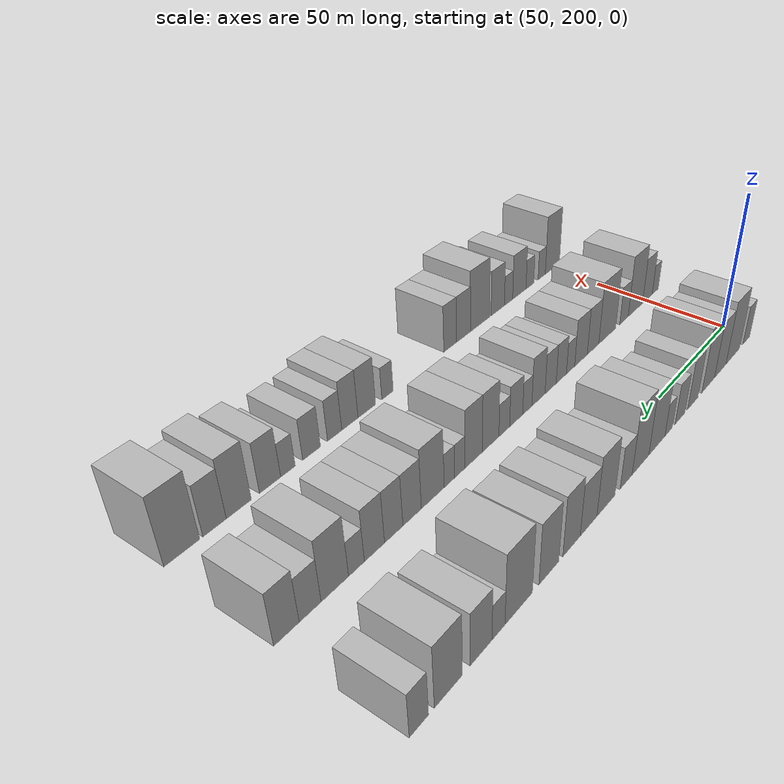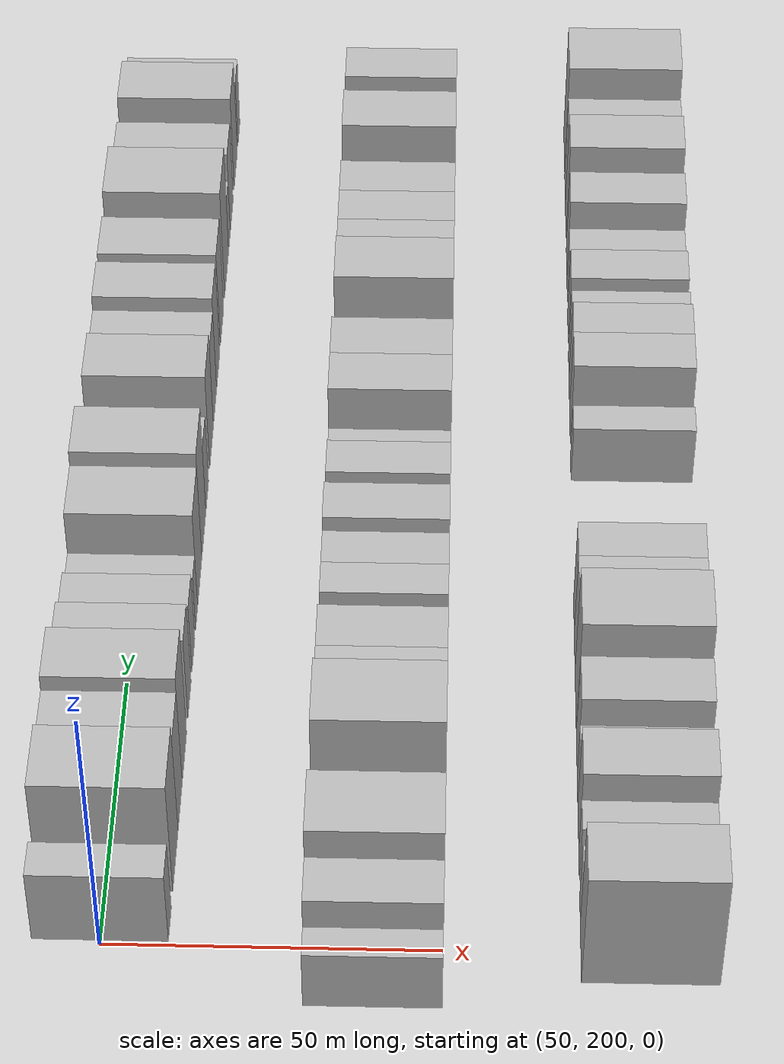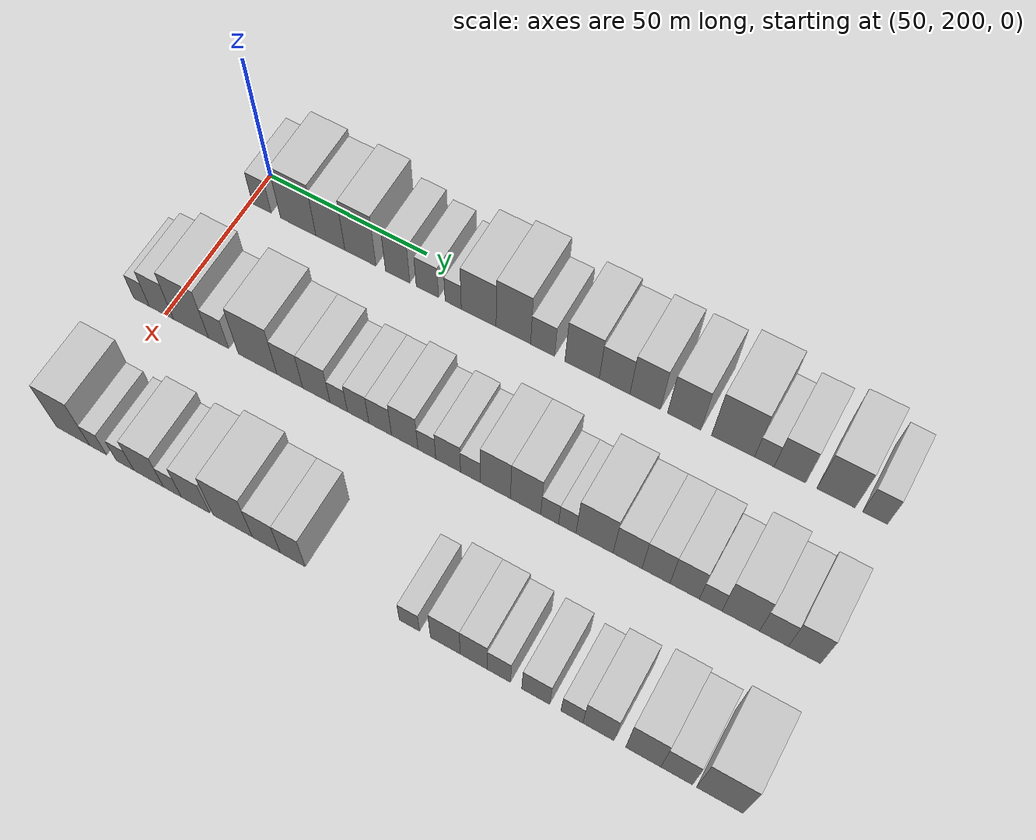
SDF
<sdf version="1.6">
 <world name="default">
  <model name="building_62">
   <static>1</static>
   <pose>50.0000 203.7942 0 0.000000 0.000000 0.000000</pose>
   <link name="link">
    <pose>0 0 7.50 0 0 0</pose>
    <collision name="collision"><geometry><box><size>20.0000 6.0526 15.0000</size></box></geometry></collision>
    <visual name="visual">
     <cast_shadows>0</cast_shadows>
     <geometry><box><size>20.0000 6.0526 15.0000</size></box></geometry>
     <material>
      <script>
       <uri>model://HANNAS_wall/materials/scripts</uri>
       <uri>model://HANNAS_wall/materials/textures</uri>
       <name>vrc/HANNAS_wall</name>
      </script>
     </material>
    </visual>
   </link>
  </model>
  <model name="building_63">
   <static>1</static>
   <pose>50.0000 215.5076 0 0.000000 0.000000 0.000000</pose>
   <link name="link">
    <pose>0 0 12.00 0 0 0</pose>
    <collision name="collision"><geometry><box><size>20.0000 11.3742 24.0000</size></box></geometry></collision>
    <visual name="visual">
     <cast_shadows>0</cast_shadows>
     <geometry><box><size>20.0000 11.3742 24.0000</size></box></geometry>
     <material>
      <script>
       <uri>model://HANNAS_wall/materials/scripts</uri>
       <uri>model://HANNAS_wall/materials/textures</uri>
       <name>vrc/HANNAS_wall</name>
      </script>
     </material>
    </visual>
   </link>
  </model>
  <model name="building_64">
   <static>1</static>
   <pose>50.0000 225.7938 0 0.000000 0.000000 0.000000</pose>
   <link name="link">
    <pose>0 0 10.50 0 0 0</pose>
    <collision name="collision"><geometry><box><size>20.0000 9.1982 21.0000</size></box></geometry></collision>
    <visual name="visual">
     <cast_shadows>0</cast_shadows>
     <geometry><box><size>20.0000 9.1982 21.0000</size></box></geometry>
     <material>
      <script>
       <uri>model://HANNAS_wall/materials/scripts</uri>
       <uri>model://HANNAS_wall/materials/textures</uri>
       <name>vrc/HANNAS_wall</name>
      </script>
     </material>
    </visual>
   </link>
  </model>
  <model name="building_65">
   <static>1</static>
   <pose>50.0000 235.2613 0 0.000000 0.000000 0.000000</pose>
   <link name="link">
    <pose>0 0 12.00 0 0 0</pose>
    <collision name="collision"><geometry><box><size>20.0000 9.7368 24.0000</size></box></geometry></collision>
    <visual name="visual">
     <cast_shadows>0</cast_shadows>
     <geometry><box><size>20.0000 9.7368 24.0000</size></box></geometry>
     <material>
      <script>
       <uri>model://HANNAS_wall/materials/scripts</uri>
       <uri>model://HANNAS_wall/materials/textures</uri>
       <name>vrc/HANNAS_wall</name>
      </script>
     </material>
    </visual>
   </link>
  </model>
  <model name="building_66">
   <static>1</static>
   <pose>50.0000 246.8847 0 0.000000 0.000000 0.000000</pose>
   <link name="link">
    <pose>0 0 9.00 0 0 0</pose>
    <collision name="collision"><geometry><box><size>20.0000 7.5099 18.0000</size></box></geometry></collision>
    <visual name="visual">
     <cast_shadows>0</cast_shadows>
     <geometry><box><size>20.0000 7.5099 18.0000</size></box></geometry>
     <material>
      <script>
       <uri>model://HANNAS_wall/materials/scripts</uri>
       <uri>model://HANNAS_wall/materials/textures</uri>
       <name>vrc/HANNAS_wall</name>
      </script>
     </material>
    </visual>
   </link>
  </model>
  <model name="building_67">
   <static>1</static>
   <pose>50.0000 256.0521 0 0.000000 0.000000 0.000000</pose>
   <link name="link">
    <pose>0 0 7.50 0 0 0</pose>
    <collision name="collision"><geometry><box><size>20.0000 6.8249 15.0000</size></box></geometry></collision>
    <visual name="visual">
     <cast_shadows>0</cast_shadows>
     <geometry><box><size>20.0000 6.8249 15.0000</size></box></geometry>
     <material>
      <script>
       <uri>model://HANNAS_wall/materials/scripts</uri>
       <uri>model://HANNAS_wall/materials/textures</uri>
       <name>vrc/HANNAS_wall</name>
      </script>
     </material>
    </visual>
   </link>
  </model>
  <model name="building_68">
   <static>1</static>
   <pose>50.0000 263.9244 0 0.000000 0.000000 0.000000</pose>
   <link name="link">
    <pose>0 0 6.00 0 0 0</pose>
    <collision name="collision"><geometry><box><size>20.0000 4.9197 12.0000</size></box></geometry></collision>
    <visual name="visual">
     <cast_shadows>0</cast_shadows>
     <geometry><box><size>20.0000 4.9197 12.0000</size></box></geometry>
     <material>
      <script>
       <uri>model://HANNAS_wall/materials/scripts</uri>
       <uri>model://HANNAS_wall/materials/textures</uri>
       <name>vrc/HANNAS_wall</name>
      </script>
     </material>
    </visual>
   </link>
  </model>
  <model name="building_69">
   <static>1</static>
   <pose>50.0000 271.6307 0 0.000000 0.000000 0.000000</pose>
   <link name="link">
    <pose>0 0 10.50 0 0 0</pose>
    <collision name="collision"><geometry><box><size>20.0000 10.4929 21.0000</size></box></geometry></collision>
    <visual name="visual">
     <cast_shadows>0</cast_shadows>
     <geometry><box><size>20.0000 10.4929 21.0000</size></box></geometry>
     <material>
      <script>
       <uri>model://HANNAS_wall/materials/scripts</uri>
       <uri>model://HANNAS_wall/materials/textures</uri>
       <name>vrc/HANNAS_wall</name>
      </script>
     </material>
    </visual>
   </link>
  </model>
  <model name="building_70">
   <static>1</static>
   <pose>50.0000 282.0221 0 0.000000 0.000000 0.000000</pose>
   <link name="link">
    <pose>0 0 12.00 0 0 0</pose>
    <collision name="collision"><geometry><box><size>20.0000 10.2899 24.0000</size></box></geometry></collision>
    <visual name="visual">
     <cast_shadows>0</cast_shadows>
     <geometry><box><size>20.0000 10.2899 24.0000</size></box></geometry>
     <material>
      <script>
       <uri>model://HANNAS_wall/materials/scripts</uri>
       <uri>model://HANNAS_wall/materials/textures</uri>
       <name>vrc/HANNAS_wall</name>
      </script>
     </material>
    </visual>
   </link>
  </model>
  <model name="building_71">
   <static>1</static>
   <pose>50.0000 290.7199 0 0.000000 0.000000 0.000000</pose>
   <link name="link">
    <pose>0 0 7.50 0 0 0</pose>
    <collision name="collision"><geometry><box><size>20.0000 7.1058 15.0000</size></box></geometry></collision>
    <visual name="visual">
     <cast_shadows>0</cast_shadows>
     <geometry><box><size>20.0000 7.1058 15.0000</size></box></geometry>
     <material>
      <script>
       <uri>model://HANNAS_wall/materials/scripts</uri>
       <uri>model://HANNAS_wall/materials/textures</uri>
       <name>vrc/HANNAS_wall</name>
      </script>
     </material>
    </visual>
   </link>
  </model>
  <model name="building_72">
   <static>1</static>
   <pose>50.0000 302.2746 0 0.000000 0.000000 0.000000</pose>
   <link name="link">
    <pose>0 0 10.50 0 0 0</pose>
    <collision name="collision"><geometry><box><size>20.0000 10.0037 21.0000</size></box></geometry></collision>
    <visual name="visual">
     <cast_shadows>0</cast_shadows>
     <geometry><box><size>20.0000 10.0037 21.0000</size></box></geometry>
     <material>
      <script>
       <uri>model://HANNAS_wall/materials/scripts</uri>
       <uri>model://HANNAS_wall/materials/textures</uri>
       <name>vrc/HANNAS_wall</name>
      </script>
     </material>
    </visual>
   </link>
  </model>
  <model name="building_73">
   <static>1</static>
   <pose>50.0000 311.6985 0 0.000000 0.000000 0.000000</pose>
   <link name="link">
    <pose>0 0 9.00 0 0 0</pose>
    <collision name="collision"><geometry><box><size>20.0000 8.8439 18.0000</size></box></geometry></collision>
    <visual name="visual">
     <cast_shadows>0</cast_shadows>
     <geometry><box><size>20.0000 8.8439 18.0000</size></box></geometry>
     <material>
      <script>
       <uri>model://HANNAS_wall/materials/scripts</uri>
       <uri>model://HANNAS_wall/materials/textures</uri>
       <name>vrc/HANNAS_wall</name>
      </script>
     </material>
    </visual>
   </link>
  </model>
  <model name="building_74">
   <static>1</static>
   <pose>50.0000 320.4883 0 0.000000 0.000000 0.000000</pose>
   <link name="link">
    <pose>0 0 10.50 0 0 0</pose>
    <collision name="collision"><geometry><box><size>20.0000 8.7357 21.0000</size></box></geometry></collision>
    <visual name="visual">
     <cast_shadows>0</cast_shadows>
     <geometry><box><size>20.0000 8.7357 21.0000</size></box></geometry>
     <material>
      <script>
       <uri>model://HANNAS_wall/materials/scripts</uri>
       <uri>model://HANNAS_wall/materials/textures</uri>
       <name>vrc/HANNAS_wall</name>
      </script>
     </material>
    </visual>
   </link>
  </model>
  <model name="building_75">
   <static>1</static>
   <pose>50.0000 331.5477 0 0.000000 0.000000 0.000000</pose>
   <link name="link">
    <pose>0 0 10.50 0 0 0</pose>
    <collision name="collision"><geometry><box><size>20.0000 9.3830 21.0000</size></box></geometry></collision>
    <visual name="visual">
     <cast_shadows>0</cast_shadows>
     <geometry><box><size>20.0000 9.3830 21.0000</size></box></geometry>
     <material>
      <script>
       <uri>model://HANNAS_wall/materials/scripts</uri>
       <uri>model://HANNAS_wall/materials/textures</uri>
       <name>vrc/HANNAS_wall</name>
      </script>
     </material>
    </visual>
   </link>
  </model>
  <model name="building_76">
   <static>1</static>
   <pose>50.0000 345.1971 0 0.000000 0.000000 0.000000</pose>
   <link name="link">
    <pose>0 0 12.00 0 0 0</pose>
    <collision name="collision"><geometry><box><size>20.0000 11.9158 24.0000</size></box></geometry></collision>
    <visual name="visual">
     <cast_shadows>0</cast_shadows>
     <geometry><box><size>20.0000 11.9158 24.0000</size></box></geometry>
     <material>
      <script>
       <uri>model://HANNAS_wall/materials/scripts</uri>
       <uri>model://HANNAS_wall/materials/textures</uri>
       <name>vrc/HANNAS_wall</name>
      </script>
     </material>
    </visual>
   </link>
  </model>
  <model name="building_77">
   <static>1</static>
   <pose>50.0000 353.8423 0 0.000000 0.000000 0.000000</pose>
   <link name="link">
    <pose>0 0 6.00 0 0 0</pose>
    <collision name="collision"><geometry><box><size>20.0000 5.3747 12.0000</size></box></geometry></collision>
    <visual name="visual">
     <cast_shadows>0</cast_shadows>
     <geometry><box><size>20.0000 5.3747 12.0000</size></box></geometry>
     <material>
      <script>
       <uri>model://HANNAS_wall/materials/scripts</uri>
       <uri>model://HANNAS_wall/materials/textures</uri>
       <name>vrc/HANNAS_wall</name>
      </script>
     </material>
    </visual>
   </link>
  </model>
  <model name="building_78">
   <static>1</static>
   <pose>50.0000 360.8440 0 0.000000 0.000000 0.000000</pose>
   <link name="link">
    <pose>0 0 9.00 0 0 0</pose>
    <collision name="collision"><geometry><box><size>20.0000 8.6287 18.0000</size></box></geometry></collision>
    <visual name="visual">
     <cast_shadows>0</cast_shadows>
     <geometry><box><size>20.0000 8.6287 18.0000</size></box></geometry>
     <material>
      <script>
       <uri>model://HANNAS_wall/materials/scripts</uri>
       <uri>model://HANNAS_wall/materials/textures</uri>
       <name>vrc/HANNAS_wall</name>
      </script>
     </material>
    </visual>
   </link>
  </model>
  <model name="building_79">
   <static>1</static>
   <pose>50.0000 373.3107 0 0.000000 0.000000 0.000000</pose>
   <link name="link">
    <pose>0 0 10.50 0 0 0</pose>
    <collision name="collision"><geometry><box><size>20.0000 10.3048 21.0000</size></box></geometry></collision>
    <visual name="visual">
     <cast_shadows>0</cast_shadows>
     <geometry><box><size>20.0000 10.3048 21.0000</size></box></geometry>
     <material>
      <script>
       <uri>model://HANNAS_wall/materials/scripts</uri>
       <uri>model://HANNAS_wall/materials/textures</uri>
       <name>vrc/HANNAS_wall</name>
      </script>
     </material>
    </visual>
   </link>
  </model>
  <model name="building_80">
   <static>1</static>
   <pose>50.0000 383.7714 0 0.000000 0.000000 0.000000</pose>
   <link name="link">
    <pose>0 0 7.50 0 0 0</pose>
    <collision name="collision"><geometry><box><size>20.0000 6.6165 15.0000</size></box></geometry></collision>
    <visual name="visual">
     <cast_shadows>0</cast_shadows>
     <geometry><box><size>20.0000 6.6165 15.0000</size></box></geometry>
     <material>
      <script>
       <uri>model://HANNAS_wall/materials/scripts</uri>
       <uri>model://HANNAS_wall/materials/textures</uri>
       <name>vrc/HANNAS_wall</name>
      </script>
     </material>
    </visual>
   </link>
  </model>
  <model name="building_146">
   <static>1</static>
   <pose>90.0000 192.4633 0 0.000000 0.000000 0.000000</pose>
   <link name="link">
    <pose>0 0 6.00 0 0 0</pose>
    <collision name="collision"><geometry><box><size>20.0000 4.9890 12.0000</size></box></geometry></collision>
    <visual name="visual">
     <cast_shadows>0</cast_shadows>
     <geometry><box><size>20.0000 4.9890 12.0000</size></box></geometry>
     <material>
      <script>
       <uri>model://HANNAS_wall/materials/scripts</uri>
       <uri>model://HANNAS_wall/materials/textures</uri>
       <name>vrc/HANNAS_wall</name>
      </script>
     </material>
    </visual>
   </link>
  </model>
  <model name="building_147">
   <static>1</static>
   <pose>90.0000 198.8205 0 0.000000 0.000000 0.000000</pose>
   <link name="link">
    <pose>0 0 9.00 0 0 0</pose>
    <collision name="collision"><geometry><box><size>20.0000 7.7255 18.0000</size></box></geometry></collision>
    <visual name="visual">
     <cast_shadows>0</cast_shadows>
     <geometry><box><size>20.0000 7.7255 18.0000</size></box></geometry>
     <material>
      <script>
       <uri>model://HANNAS_wall/materials/scripts</uri>
       <uri>model://HANNAS_wall/materials/textures</uri>
       <name>vrc/HANNAS_wall</name>
      </script>
     </material>
    </visual>
   </link>
  </model>
  <model name="building_148">
   <static>1</static>
   <pose>90.0000 208.2247 0 0.000000 0.000000 0.000000</pose>
   <link name="link">
    <pose>0 0 12.00 0 0 0</pose>
    <collision name="collision"><geometry><box><size>20.0000 11.0828 24.0000</size></box></geometry></collision>
    <visual name="visual">
     <cast_shadows>0</cast_shadows>
     <geometry><box><size>20.0000 11.0828 24.0000</size></box></geometry>
     <material>
      <script>
       <uri>model://HANNAS_wall/materials/scripts</uri>
       <uri>model://HANNAS_wall/materials/textures</uri>
       <name>vrc/HANNAS_wall</name>
      </script>
     </material>
    </visual>
   </link>
  </model>
  <model name="building_149">
   <static>1</static>
   <pose>90.0000 216.9143 0 0.000000 0.000000 0.000000</pose>
   <link name="link">
    <pose>0 0 7.50 0 0 0</pose>
    <collision name="collision"><geometry><box><size>20.0000 6.2964 15.0000</size></box></geometry></collision>
    <visual name="visual">
     <cast_shadows>0</cast_shadows>
     <geometry><box><size>20.0000 6.2964 15.0000</size></box></geometry>
     <material>
      <script>
       <uri>model://HANNAS_wall/materials/scripts</uri>
       <uri>model://HANNAS_wall/materials/textures</uri>
       <name>vrc/HANNAS_wall</name>
      </script>
     </material>
    </visual>
   </link>
  </model>
  <model name="building_150">
   <static>1</static>
   <pose>90.0000 229.0247 0 0.000000 0.000000 0.000000</pose>
   <link name="link">
    <pose>0 0 12.00 0 0 0</pose>
    <collision name="collision"><geometry><box><size>20.0000 11.9246 24.0000</size></box></geometry></collision>
    <visual name="visual">
     <cast_shadows>0</cast_shadows>
     <geometry><box><size>20.0000 11.9246 24.0000</size></box></geometry>
     <material>
      <script>
       <uri>model://HANNAS_wall/materials/scripts</uri>
       <uri>model://HANNAS_wall/materials/textures</uri>
       <name>vrc/HANNAS_wall</name>
      </script>
     </material>
    </visual>
   </link>
  </model>
  <model name="building_151">
   <static>1</static>
   <pose>90.0000 238.8987 0 0.000000 0.000000 0.000000</pose>
   <link name="link">
    <pose>0 0 9.00 0 0 0</pose>
    <collision name="collision"><geometry><box><size>20.0000 7.8234 18.0000</size></box></geometry></collision>
    <visual name="visual">
     <cast_shadows>0</cast_shadows>
     <geometry><box><size>20.0000 7.8234 18.0000</size></box></geometry>
     <material>
      <script>
       <uri>model://HANNAS_wall/materials/scripts</uri>
       <uri>model://HANNAS_wall/materials/textures</uri>
       <name>vrc/HANNAS_wall</name>
      </script>
     </material>
    </visual>
   </link>
  </model>
  <model name="building_152">
   <static>1</static>
   <pose>90.0000 246.9502 0 0.000000 0.000000 0.000000</pose>
   <link name="link">
    <pose>0 0 9.00 0 0 0</pose>
    <collision name="collision"><geometry><box><size>20.0000 8.2796 18.0000</size></box></geometry></collision>
    <visual name="visual">
     <cast_shadows>0</cast_shadows>
     <geometry><box><size>20.0000 8.2796 18.0000</size></box></geometry>
     <material>
      <script>
       <uri>model://HANNAS_wall/materials/scripts</uri>
       <uri>model://HANNAS_wall/materials/textures</uri>
       <name>vrc/HANNAS_wall</name>
      </script>
     </material>
    </visual>
   </link>
  </model>
  <model name="building_153">
   <static>1</static>
   <pose>90.0000 253.7092 0 0.000000 0.000000 0.000000</pose>
   <link name="link">
    <pose>0 0 6.00 0 0 0</pose>
    <collision name="collision"><geometry><box><size>20.0000 5.2384 12.0000</size></box></geometry></collision>
    <visual name="visual">
     <cast_shadows>0</cast_shadows>
     <geometry><box><size>20.0000 5.2384 12.0000</size></box></geometry>
     <material>
      <script>
       <uri>model://HANNAS_wall/materials/scripts</uri>
       <uri>model://HANNAS_wall/materials/textures</uri>
       <name>vrc/HANNAS_wall</name>
      </script>
     </material>
    </visual>
   </link>
  </model>
  <model name="building_154">
   <static>1</static>
   <pose>90.0000 259.5187 0 0.000000 0.000000 0.000000</pose>
   <link name="link">
    <pose>0 0 7.50 0 0 0</pose>
    <collision name="collision"><geometry><box><size>20.0000 6.3807 15.0000</size></box></geometry></collision>
    <visual name="visual">
     <cast_shadows>0</cast_shadows>
     <geometry><box><size>20.0000 6.3807 15.0000</size></box></geometry>
     <material>
      <script>
       <uri>model://HANNAS_wall/materials/scripts</uri>
       <uri>model://HANNAS_wall/materials/textures</uri>
       <name>vrc/HANNAS_wall</name>
      </script>
     </material>
    </visual>
   </link>
  </model>
  <model name="building_155">
   <static>1</static>
   <pose>90.0000 266.0575 0 0.000000 0.000000 0.000000</pose>
   <link name="link">
    <pose>0 0 7.50 0 0 0</pose>
    <collision name="collision"><geometry><box><size>20.0000 6.6969 15.0000</size></box></geometry></collision>
    <visual name="visual">
     <cast_shadows>0</cast_shadows>
     <geometry><box><size>20.0000 6.6969 15.0000</size></box></geometry>
     <material>
      <script>
       <uri>model://HANNAS_wall/materials/scripts</uri>
       <uri>model://HANNAS_wall/materials/textures</uri>
       <name>vrc/HANNAS_wall</name>
      </script>
     </material>
    </visual>
   </link>
  </model>
  <model name="building_156">
   <static>1</static>
   <pose>90.0000 273.2654 0 0.000000 0.000000 0.000000</pose>
   <link name="link">
    <pose>0 0 9.00 0 0 0</pose>
    <collision name="collision"><geometry><box><size>20.0000 7.7188 18.0000</size></box></geometry></collision>
    <visual name="visual">
     <cast_shadows>0</cast_shadows>
     <geometry><box><size>20.0000 7.7188 18.0000</size></box></geometry>
     <material>
      <script>
       <uri>model://HANNAS_wall/materials/scripts</uri>
       <uri>model://HANNAS_wall/materials/textures</uri>
       <name>vrc/HANNAS_wall</name>
      </script>
     </material>
    </visual>
   </link>
  </model>
  <model name="building_157">
   <static>1</static>
   <pose>90.0000 279.7193 0 0.000000 0.000000 0.000000</pose>
   <link name="link">
    <pose>0 0 6.00 0 0 0</pose>
    <collision name="collision"><geometry><box><size>20.0000 5.1892 12.0000</size></box></geometry></collision>
    <visual name="visual">
     <cast_shadows>0</cast_shadows>
     <geometry><box><size>20.0000 5.1892 12.0000</size></box></geometry>
     <material>
      <script>
       <uri>model://HANNAS_wall/materials/scripts</uri>
       <uri>model://HANNAS_wall/materials/textures</uri>
       <name>vrc/HANNAS_wall</name>
      </script>
     </material>
    </visual>
   </link>
  </model>
  <model name="building_158">
   <static>1</static>
   <pose>90.0000 285.8961 0 0.000000 0.000000 0.000000</pose>
   <link name="link">
    <pose>0 0 7.50 0 0 0</pose>
    <collision name="collision"><geometry><box><size>20.0000 7.1643 15.0000</size></box></geometry></collision>
    <visual name="visual">
     <cast_shadows>0</cast_shadows>
     <geometry><box><size>20.0000 7.1643 15.0000</size></box></geometry>
     <material>
      <script>
       <uri>model://HANNAS_wall/materials/scripts</uri>
       <uri>model://HANNAS_wall/materials/textures</uri>
       <name>vrc/HANNAS_wall</name>
      </script>
     </material>
    </visual>
   </link>
  </model>
  <model name="building_159">
   <static>1</static>
   <pose>90.0000 292.3378 0 0.000000 0.000000 0.000000</pose>
   <link name="link">
    <pose>0 0 6.00 0 0 0</pose>
    <collision name="collision"><geometry><box><size>20.0000 5.7192 12.0000</size></box></geometry></collision>
    <visual name="visual">
     <cast_shadows>0</cast_shadows>
     <geometry><box><size>20.0000 5.7192 12.0000</size></box></geometry>
     <material>
      <script>
       <uri>model://HANNAS_wall/materials/scripts</uri>
       <uri>model://HANNAS_wall/materials/textures</uri>
       <name>vrc/HANNAS_wall</name>
      </script>
     </material>
    </visual>
   </link>
  </model>
  <model name="building_160">
   <static>1</static>
   <pose>90.0000 299.4343 0 0.000000 0.000000 0.000000</pose>
   <link name="link">
    <pose>0 0 10.50 0 0 0</pose>
    <collision name="collision"><geometry><box><size>20.0000 8.4737 21.0000</size></box></geometry></collision>
    <visual name="visual">
     <cast_shadows>0</cast_shadows>
     <geometry><box><size>20.0000 8.4737 21.0000</size></box></geometry>
     <material>
      <script>
       <uri>model://HANNAS_wall/materials/scripts</uri>
       <uri>model://HANNAS_wall/materials/textures</uri>
       <name>vrc/HANNAS_wall</name>
      </script>
     </material>
    </visual>
   </link>
  </model>
  <model name="building_161">
   <static>1</static>
   <pose>90.0000 307.9418 0 0.000000 0.000000 0.000000</pose>
   <link name="link">
    <pose>0 0 10.50 0 0 0</pose>
    <collision name="collision"><geometry><box><size>20.0000 8.5414 21.0000</size></box></geometry></collision>
    <visual name="visual">
     <cast_shadows>0</cast_shadows>
     <geometry><box><size>20.0000 8.5414 21.0000</size></box></geometry>
     <material>
      <script>
       <uri>model://HANNAS_wall/materials/scripts</uri>
       <uri>model://HANNAS_wall/materials/textures</uri>
       <name>vrc/HANNAS_wall</name>
      </script>
     </material>
    </visual>
   </link>
  </model>
  <model name="building_162">
   <static>1</static>
   <pose>90.0000 314.7065 0 0.000000 0.000000 0.000000</pose>
   <link name="link">
    <pose>0 0 6.00 0 0 0</pose>
    <collision name="collision"><geometry><box><size>20.0000 4.9881 12.0000</size></box></geometry></collision>
    <visual name="visual">
     <cast_shadows>0</cast_shadows>
     <geometry><box><size>20.0000 4.9881 12.0000</size></box></geometry>
     <material>
      <script>
       <uri>model://HANNAS_wall/materials/scripts</uri>
       <uri>model://HANNAS_wall/materials/textures</uri>
       <name>vrc/HANNAS_wall</name>
      </script>
     </material>
    </visual>
   </link>
  </model>
  <model name="building_163">
   <static>1</static>
   <pose>90.0000 319.6296 0 0.000000 0.000000 0.000000</pose>
   <link name="link">
    <pose>0 0 6.00 0 0 0</pose>
    <collision name="collision"><geometry><box><size>20.0000 4.8580 12.0000</size></box></geometry></collision>
    <visual name="visual">
     <cast_shadows>0</cast_shadows>
     <geometry><box><size>20.0000 4.8580 12.0000</size></box></geometry>
     <material>
      <script>
       <uri>model://HANNAS_wall/materials/scripts</uri>
       <uri>model://HANNAS_wall/materials/textures</uri>
       <name>vrc/HANNAS_wall</name>
      </script>
     </material>
    </visual>
   </link>
  </model>
  <model name="building_164">
   <static>1</static>
   <pose>90.0000 327.1713 0 0.000000 0.000000 0.000000</pose>
   <link name="link">
    <pose>0 0 10.50 0 0 0</pose>
    <collision name="collision"><geometry><box><size>20.0000 10.2256 21.0000</size></box></geometry></collision>
    <visual name="visual">
     <cast_shadows>0</cast_shadows>
     <geometry><box><size>20.0000 10.2256 21.0000</size></box></geometry>
     <material>
      <script>
       <uri>model://HANNAS_wall/materials/scripts</uri>
       <uri>model://HANNAS_wall/materials/textures</uri>
       <name>vrc/HANNAS_wall</name>
      </script>
     </material>
    </visual>
   </link>
  </model>
  <model name="building_165">
   <static>1</static>
   <pose>90.0000 336.2147 0 0.000000 0.000000 0.000000</pose>
   <link name="link">
    <pose>0 0 9.00 0 0 0</pose>
    <collision name="collision"><geometry><box><size>20.0000 7.8612 18.0000</size></box></geometry></collision>
    <visual name="visual">
     <cast_shadows>0</cast_shadows>
     <geometry><box><size>20.0000 7.8612 18.0000</size></box></geometry>
     <material>
      <script>
       <uri>model://HANNAS_wall/materials/scripts</uri>
       <uri>model://HANNAS_wall/materials/textures</uri>
       <name>vrc/HANNAS_wall</name>
      </script>
     </material>
    </visual>
   </link>
  </model>
  <model name="building_166">
   <static>1</static>
   <pose>90.0000 343.9002 0 0.000000 0.000000 0.000000</pose>
   <link name="link">
    <pose>0 0 9.00 0 0 0</pose>
    <collision name="collision"><geometry><box><size>20.0000 7.5099 18.0000</size></box></geometry></collision>
    <visual name="visual">
     <cast_shadows>0</cast_shadows>
     <geometry><box><size>20.0000 7.5099 18.0000</size></box></geometry>
     <material>
      <script>
       <uri>model://HANNAS_wall/materials/scripts</uri>
       <uri>model://HANNAS_wall/materials/textures</uri>
       <name>vrc/HANNAS_wall</name>
      </script>
     </material>
    </visual>
   </link>
  </model>
  <model name="building_167">
   <static>1</static>
   <pose>90.0000 351.6006 0 0.000000 0.000000 0.000000</pose>
   <link name="link">
    <pose>0 0 9.00 0 0 0</pose>
    <collision name="collision"><geometry><box><size>20.0000 7.8909 18.0000</size></box></geometry></collision>
    <visual name="visual">
     <cast_shadows>0</cast_shadows>
     <geometry><box><size>20.0000 7.8909 18.0000</size></box></geometry>
     <material>
      <script>
       <uri>model://HANNAS_wall/materials/scripts</uri>
       <uri>model://HANNAS_wall/materials/textures</uri>
       <name>vrc/HANNAS_wall</name>
      </script>
     </material>
    </visual>
   </link>
  </model>
  <model name="building_168">
   <static>1</static>
   <pose>90.0000 358.5253 0 0.000000 0.000000 0.000000</pose>
   <link name="link">
    <pose>0 0 6.00 0 0 0</pose>
    <collision name="collision"><geometry><box><size>20.0000 5.9584 12.0000</size></box></geometry></collision>
    <visual name="visual">
     <cast_shadows>0</cast_shadows>
     <geometry><box><size>20.0000 5.9584 12.0000</size></box></geometry>
     <material>
      <script>
       <uri>model://HANNAS_wall/materials/scripts</uri>
       <uri>model://HANNAS_wall/materials/textures</uri>
       <name>vrc/HANNAS_wall</name>
      </script>
     </material>
    </visual>
   </link>
  </model>
  <model name="building_169">
   <static>1</static>
   <pose>90.0000 366.4369 0 0.000000 0.000000 0.000000</pose>
   <link name="link">
    <pose>0 0 10.50 0 0 0</pose>
    <collision name="collision"><geometry><box><size>20.0000 9.8648 21.0000</size></box></geometry></collision>
    <visual name="visual">
     <cast_shadows>0</cast_shadows>
     <geometry><box><size>20.0000 9.8648 21.0000</size></box></geometry>
     <material>
      <script>
       <uri>model://HANNAS_wall/materials/scripts</uri>
       <uri>model://HANNAS_wall/materials/textures</uri>
       <name>vrc/HANNAS_wall</name>
      </script>
     </material>
    </visual>
   </link>
  </model>
  <model name="building_170">
   <static>1</static>
   <pose>90.0000 375.1097 0 0.000000 0.000000 0.000000</pose>
   <link name="link">
    <pose>0 0 7.50 0 0 0</pose>
    <collision name="collision"><geometry><box><size>20.0000 7.4807 15.0000</size></box></geometry></collision>
    <visual name="visual">
     <cast_shadows>0</cast_shadows>
     <geometry><box><size>20.0000 7.4807 15.0000</size></box></geometry>
     <material>
      <script>
       <uri>model://HANNAS_wall/materials/scripts</uri>
       <uri>model://HANNAS_wall/materials/textures</uri>
       <name>vrc/HANNAS_wall</name>
      </script>
     </material>
    </visual>
   </link>
  </model>
  <model name="building_171">
   <static>1</static>
   <pose>90.0000 383.0175 0 0.000000 0.000000 0.000000</pose>
   <link name="link">
    <pose>0 0 9.00 0 0 0</pose>
    <collision name="collision"><geometry><box><size>20.0000 8.3349 18.0000</size></box></geometry></collision>
    <visual name="visual">
     <cast_shadows>0</cast_shadows>
     <geometry><box><size>20.0000 8.3349 18.0000</size></box></geometry>
     <material>
      <script>
       <uri>model://HANNAS_wall/materials/scripts</uri>
       <uri>model://HANNAS_wall/materials/textures</uri>
       <name>vrc/HANNAS_wall</name>
      </script>
     </material>
    </visual>
   </link>
  </model>
  <model name="building_236">
   <static>1</static>
   <pose>130.0000 200.0901 0 0.000000 0.000000 0.000000</pose>
   <link name="link">
    <pose>0 0 12.00 0 0 0</pose>
    <collision name="collision"><geometry><box><size>20.0000 10.3241 24.0000</size></box></geometry></collision>
    <visual name="visual">
     <cast_shadows>0</cast_shadows>
     <geometry><box><size>20.0000 10.3241 24.0000</size></box></geometry>
     <material>
      <script>
       <uri>model://HANNAS_wall/materials/scripts</uri>
       <uri>model://HANNAS_wall/materials/textures</uri>
       <name>vrc/HANNAS_wall</name>
      </script>
     </material>
    </visual>
   </link>
  </model>
  <model name="building_237">
   <static>1</static>
   <pose>130.0000 207.8213 0 0.000000 0.000000 0.000000</pose>
   <link name="link">
    <pose>0 0 6.00 0 0 0</pose>
    <collision name="collision"><geometry><box><size>20.0000 5.1382 12.0000</size></box></geometry></collision>
    <visual name="visual">
     <cast_shadows>0</cast_shadows>
     <geometry><box><size>20.0000 5.1382 12.0000</size></box></geometry>
     <material>
      <script>
       <uri>model://HANNAS_wall/materials/scripts</uri>
       <uri>model://HANNAS_wall/materials/textures</uri>
       <name>vrc/HANNAS_wall</name>
      </script>
     </material>
    </visual>
   </link>
  </model>
  <model name="building_238">
   <static>1</static>
   <pose>130.0000 216.0900 0 0.000000 0.000000 0.000000</pose>
   <link name="link">
    <pose>0 0 6.00 0 0 0</pose>
    <collision name="collision"><geometry><box><size>20.0000 5.3992 12.0000</size></box></geometry></collision>
    <visual name="visual">
     <cast_shadows>0</cast_shadows>
     <geometry><box><size>20.0000 5.3992 12.0000</size></box></geometry>
     <material>
      <script>
       <uri>model://HANNAS_wall/materials/scripts</uri>
       <uri>model://HANNAS_wall/materials/textures</uri>
       <name>vrc/HANNAS_wall</name>
      </script>
     </material>
    </visual>
   </link>
  </model>
  <model name="building_239">
   <static>1</static>
   <pose>130.0000 223.2643 0 0.000000 0.000000 0.000000</pose>
   <link name="link">
    <pose>0 0 9.00 0 0 0</pose>
    <collision name="collision"><geometry><box><size>20.0000 8.9494 18.0000</size></box></geometry></collision>
    <visual name="visual">
     <cast_shadows>0</cast_shadows>
     <geometry><box><size>20.0000 8.9494 18.0000</size></box></geometry>
     <material>
      <script>
       <uri>model://HANNAS_wall/materials/scripts</uri>
       <uri>model://HANNAS_wall/materials/textures</uri>
       <name>vrc/HANNAS_wall</name>
      </script>
     </material>
    </visual>
   </link>
  </model>
  <model name="building_240">
   <static>1</static>
   <pose>130.0000 230.4152 0 0.000000 0.000000 0.000000</pose>
   <link name="link">
    <pose>0 0 6.00 0 0 0</pose>
    <collision name="collision"><geometry><box><size>20.0000 5.3524 12.0000</size></box></geometry></collision>
    <visual name="visual">
     <cast_shadows>0</cast_shadows>
     <geometry><box><size>20.0000 5.3524 12.0000</size></box></geometry>
     <material>
      <script>
       <uri>model://HANNAS_wall/materials/scripts</uri>
       <uri>model://HANNAS_wall/materials/textures</uri>
       <name>vrc/HANNAS_wall</name>
      </script>
     </material>
    </visual>
   </link>
  </model>
  <model name="building_241">
   <static>1</static>
   <pose>130.0000 237.3414 0 0.000000 0.000000 0.000000</pose>
   <link name="link">
    <pose>0 0 9.00 0 0 0</pose>
    <collision name="collision"><geometry><box><size>20.0000 8.5000 18.0000</size></box></geometry></collision>
    <visual name="visual">
     <cast_shadows>0</cast_shadows>
     <geometry><box><size>20.0000 8.5000 18.0000</size></box></geometry>
     <material>
      <script>
       <uri>model://HANNAS_wall/materials/scripts</uri>
       <uri>model://HANNAS_wall/materials/textures</uri>
       <name>vrc/HANNAS_wall</name>
      </script>
     </material>
    </visual>
   </link>
  </model>
  <model name="building_242">
   <static>1</static>
   <pose>130.0000 248.3547 0 0.000000 0.000000 0.000000</pose>
   <link name="link">
    <pose>0 0 12.00 0 0 0</pose>
    <collision name="collision"><geometry><box><size>20.0000 11.5266 24.0000</size></box></geometry></collision>
    <visual name="visual">
     <cast_shadows>0</cast_shadows>
     <geometry><box><size>20.0000 11.5266 24.0000</size></box></geometry>
     <material>
      <script>
       <uri>model://HANNAS_wall/materials/scripts</uri>
       <uri>model://HANNAS_wall/materials/textures</uri>
       <name>vrc/HANNAS_wall</name>
      </script>
     </material>
    </visual>
   </link>
  </model>
  <model name="building_243">
   <static>1</static>
   <pose>130.0000 258.1622 0 0.000000 0.000000 0.000000</pose>
   <link name="link">
    <pose>0 0 9.00 0 0 0</pose>
    <collision name="collision"><geometry><box><size>20.0000 8.0885 18.0000</size></box></geometry></collision>
    <visual name="visual">
     <cast_shadows>0</cast_shadows>
     <geometry><box><size>20.0000 8.0885 18.0000</size></box></geometry>
     <material>
      <script>
       <uri>model://HANNAS_wall/materials/scripts</uri>
       <uri>model://HANNAS_wall/materials/textures</uri>
       <name>vrc/HANNAS_wall</name>
      </script>
     </material>
    </visual>
   </link>
  </model>
  <model name="building_244">
   <static>1</static>
   <pose>130.0000 265.8104 0 0.000000 0.000000 0.000000</pose>
   <link name="link">
    <pose>0 0 9.00 0 0 0</pose>
    <collision name="collision"><geometry><box><size>20.0000 7.2079 18.0000</size></box></geometry></collision>
    <visual name="visual">
     <cast_shadows>0</cast_shadows>
     <geometry><box><size>20.0000 7.2079 18.0000</size></box></geometry>
     <material>
      <script>
       <uri>model://HANNAS_wall/materials/scripts</uri>
       <uri>model://HANNAS_wall/materials/textures</uri>
       <name>vrc/HANNAS_wall</name>
      </script>
     </material>
    </visual>
   </link>
  </model>
  <model name="building_245">
   <static>1</static>
   <pose>130.0000 298.7724 0 0.000000 0.000000 0.000000</pose>
   <link name="link">
    <pose>0 0 6.00 0 0 0</pose>
    <collision name="collision"><geometry><box><size>20.0000 5.5720 12.0000</size></box></geometry></collision>
    <visual name="visual">
     <cast_shadows>0</cast_shadows>
     <geometry><box><size>20.0000 5.5720 12.0000</size></box></geometry>
     <material>
      <script>
       <uri>model://HANNAS_wall/materials/scripts</uri>
       <uri>model://HANNAS_wall/materials/textures</uri>
       <name>vrc/HANNAS_wall</name>
      </script>
     </material>
    </visual>
   </link>
  </model>
  <model name="building_246">
   <static>1</static>
   <pose>130.0000 308.6409 0 0.000000 0.000000 0.000000</pose>
   <link name="link">
    <pose>0 0 9.00 0 0 0</pose>
    <collision name="collision"><geometry><box><size>20.0000 8.1650 18.0000</size></box></geometry></collision>
    <visual name="visual">
     <cast_shadows>0</cast_shadows>
     <geometry><box><size>20.0000 8.1650 18.0000</size></box></geometry>
     <material>
      <script>
       <uri>model://HANNAS_wall/materials/scripts</uri>
       <uri>model://HANNAS_wall/materials/textures</uri>
       <name>vrc/HANNAS_wall</name>
      </script>
     </material>
    </visual>
   </link>
  </model>
  <model name="building_247">
   <static>1</static>
   <pose>130.0000 316.3699 0 0.000000 0.000000 0.000000</pose>
   <link name="link">
    <pose>0 0 9.00 0 0 0</pose>
    <collision name="collision"><geometry><box><size>20.0000 7.2931 18.0000</size></box></geometry></collision>
    <visual name="visual">
     <cast_shadows>0</cast_shadows>
     <geometry><box><size>20.0000 7.2931 18.0000</size></box></geometry>
     <material>
      <script>
       <uri>model://HANNAS_wall/materials/scripts</uri>
       <uri>model://HANNAS_wall/materials/textures</uri>
       <name>vrc/HANNAS_wall</name>
      </script>
     </material>
    </visual>
   </link>
  </model>
  <model name="building_248">
   <static>1</static>
   <pose>130.0000 323.1271 0 0.000000 0.000000 0.000000</pose>
   <link name="link">
    <pose>0 0 7.50 0 0 0</pose>
    <collision name="collision"><geometry><box><size>20.0000 6.2213 15.0000</size></box></geometry></collision>
    <visual name="visual">
     <cast_shadows>0</cast_shadows>
     <geometry><box><size>20.0000 6.2213 15.0000</size></box></geometry>
     <material>
      <script>
       <uri>model://HANNAS_wall/materials/scripts</uri>
       <uri>model://HANNAS_wall/materials/textures</uri>
       <name>vrc/HANNAS_wall</name>
      </script>
     </material>
    </visual>
   </link>
  </model>
  <model name="building_249">
   <static>1</static>
   <pose>130.0000 332.9391 0 0.000000 0.000000 0.000000</pose>
   <link name="link">
    <pose>0 0 7.50 0 0 0</pose>
    <collision name="collision"><geometry><box><size>20.0000 7.4027 15.0000</size></box></geometry></collision>
    <visual name="visual">
     <cast_shadows>0</cast_shadows>
     <geometry><box><size>20.0000 7.4027 15.0000</size></box></geometry>
     <material>
      <script>
       <uri>model://HANNAS_wall/materials/scripts</uri>
       <uri>model://HANNAS_wall/materials/textures</uri>
       <name>vrc/HANNAS_wall</name>
      </script>
     </material>
    </visual>
   </link>
  </model>
  <model name="building_250">
   <static>1</static>
   <pose>130.0000 342.5037 0 0.000000 0.000000 0.000000</pose>
   <link name="link">
    <pose>0 0 6.00 0 0 0</pose>
    <collision name="collision"><geometry><box><size>20.0000 5.7265 12.0000</size></box></geometry></collision>
    <visual name="visual">
     <cast_shadows>0</cast_shadows>
     <geometry><box><size>20.0000 5.7265 12.0000</size></box></geometry>
     <material>
      <script>
       <uri>model://HANNAS_wall/materials/scripts</uri>
       <uri>model://HANNAS_wall/materials/textures</uri>
       <name>vrc/HANNAS_wall</name>
      </script>
     </material>
    </visual>
   </link>
  </model>
  <model name="building_251">
   <static>1</static>
   <pose>130.0000 349.4299 0 0.000000 0.000000 0.000000</pose>
   <link name="link">
    <pose>0 0 9.00 0 0 0</pose>
    <collision name="collision"><geometry><box><size>20.0000 8.1259 18.0000</size></box></geometry></collision>
    <visual name="visual">
     <cast_shadows>0</cast_shadows>
     <geometry><box><size>20.0000 8.1259 18.0000</size></box></geometry>
     <material>
      <script>
       <uri>model://HANNAS_wall/materials/scripts</uri>
       <uri>model://HANNAS_wall/materials/textures</uri>
       <name>vrc/HANNAS_wall</name>
      </script>
     </material>
    </visual>
   </link>
  </model>
  <model name="building_252">
   <static>1</static>
   <pose>130.0000 360.9958 0 0.000000 0.000000 0.000000</pose>
   <link name="link">
    <pose>0 0 10.50 0 0 0</pose>
    <collision name="collision"><geometry><box><size>20.0000 9.0059 21.0000</size></box></geometry></collision>
    <visual name="visual">
     <cast_shadows>0</cast_shadows>
     <geometry><box><size>20.0000 9.0059 21.0000</size></box></geometry>
     <material>
      <script>
       <uri>model://HANNAS_wall/materials/scripts</uri>
       <uri>model://HANNAS_wall/materials/textures</uri>
       <name>vrc/HANNAS_wall</name>
      </script>
     </material>
    </visual>
   </link>
  </model>
  <model name="building_253">
   <static>1</static>
   <pose>130.0000 369.5276 0 0.000000 0.000000 0.000000</pose>
   <link name="link">
    <pose>0 0 9.00 0 0 0</pose>
    <collision name="collision"><geometry><box><size>20.0000 8.0578 18.0000</size></box></geometry></collision>
    <visual name="visual">
     <cast_shadows>0</cast_shadows>
     <geometry><box><size>20.0000 8.0578 18.0000</size></box></geometry>
     <material>
      <script>
       <uri>model://HANNAS_wall/materials/scripts</uri>
       <uri>model://HANNAS_wall/materials/textures</uri>
       <name>vrc/HANNAS_wall</name>
      </script>
     </material>
    </visual>
   </link>
  </model>
  <model name="building_254">
   <static>1</static>
   <pose>130.0000 380.3789 0 0.000000 0.000000 0.000000</pose>
   <link name="link">
    <pose>0 0 12.00 0 0 0</pose>
    <collision name="collision"><geometry><box><size>20.0000 11.6448 24.0000</size></box></geometry></collision>
    <visual name="visual">
     <cast_shadows>0</cast_shadows>
     <geometry><box><size>20.0000 11.6448 24.0000</size></box></geometry>
     <material>
      <script>
       <uri>model://HANNAS_wall/materials/scripts</uri>
       <uri>model://HANNAS_wall/materials/textures</uri>
       <name>vrc/HANNAS_wall</name>
      </script>
     </material>
    </visual>
   </link>
  </model>
 </world>
</sdf>
